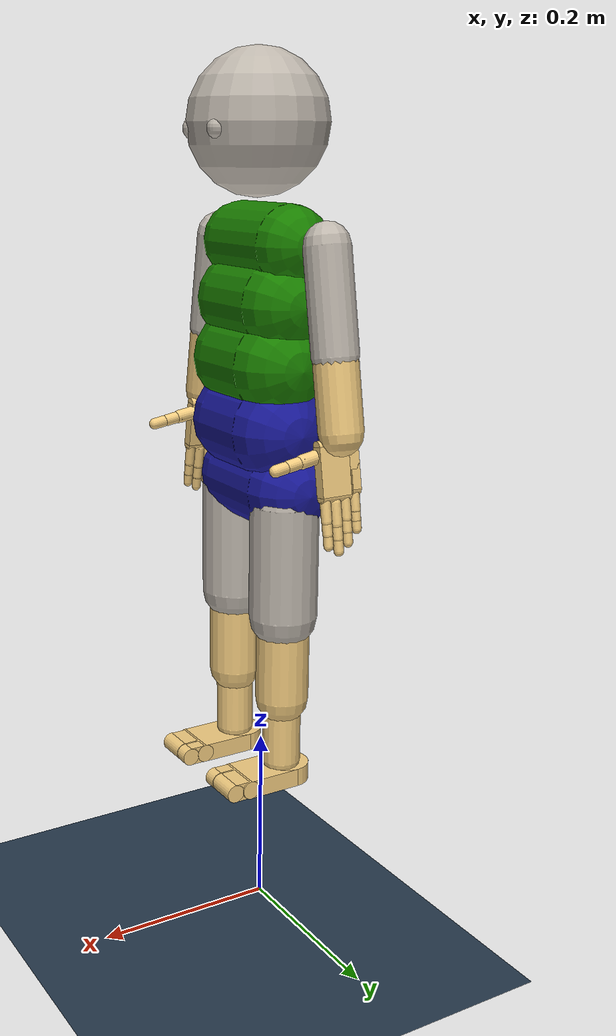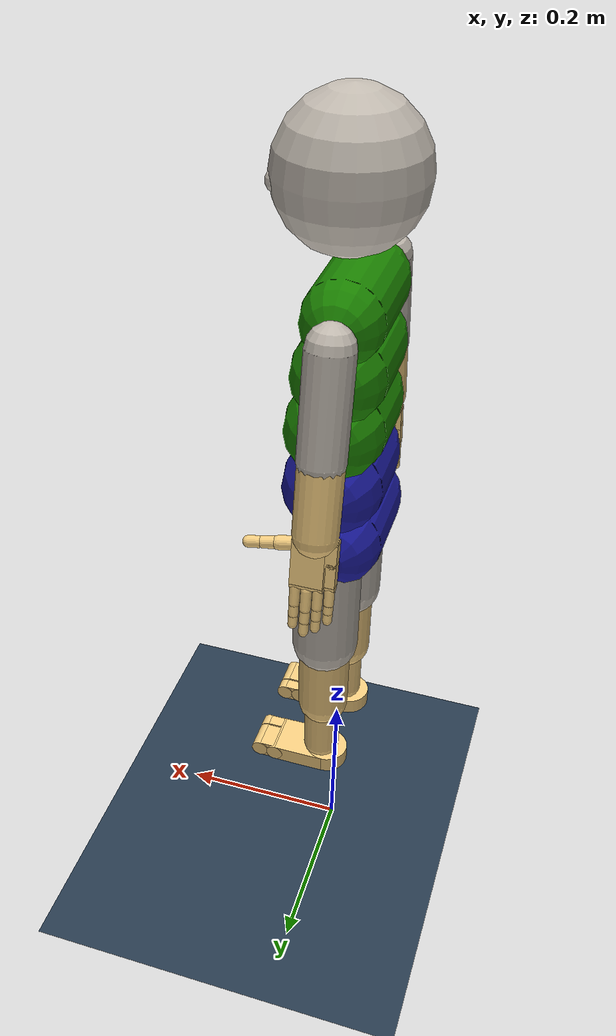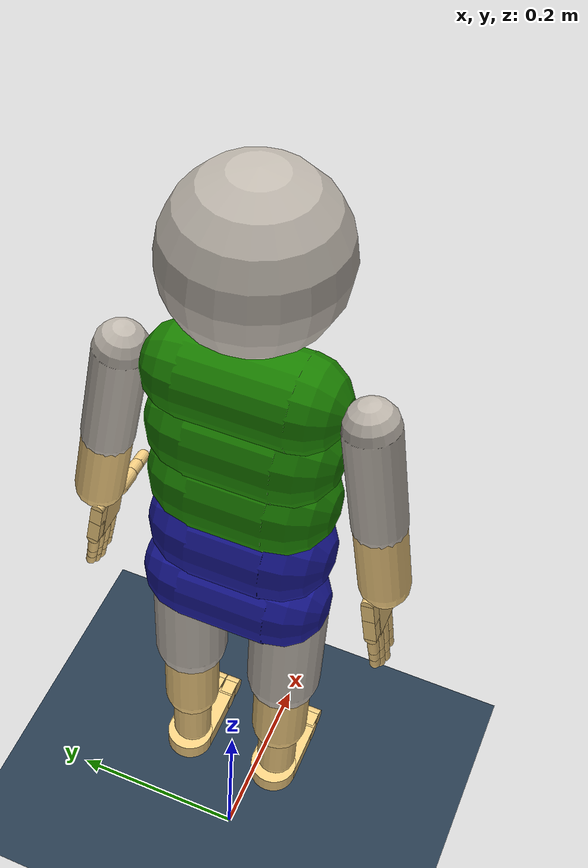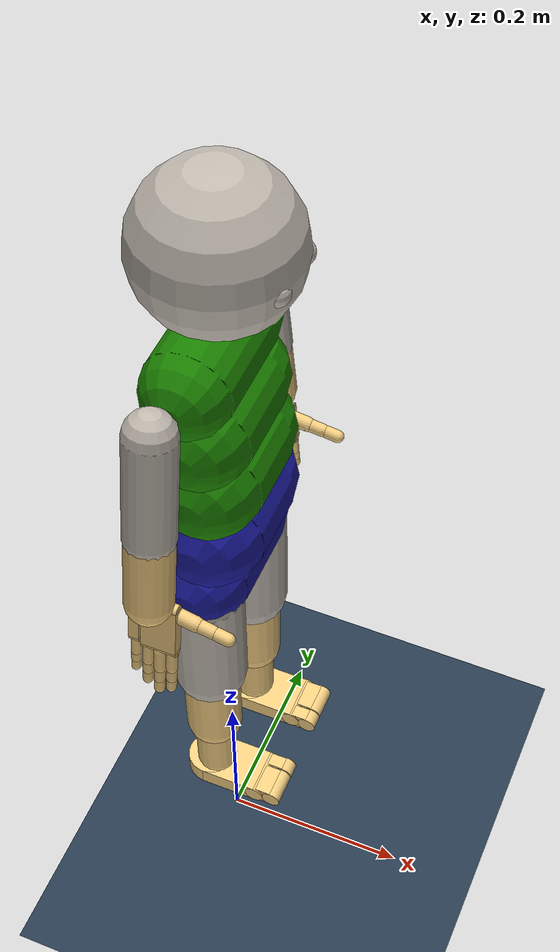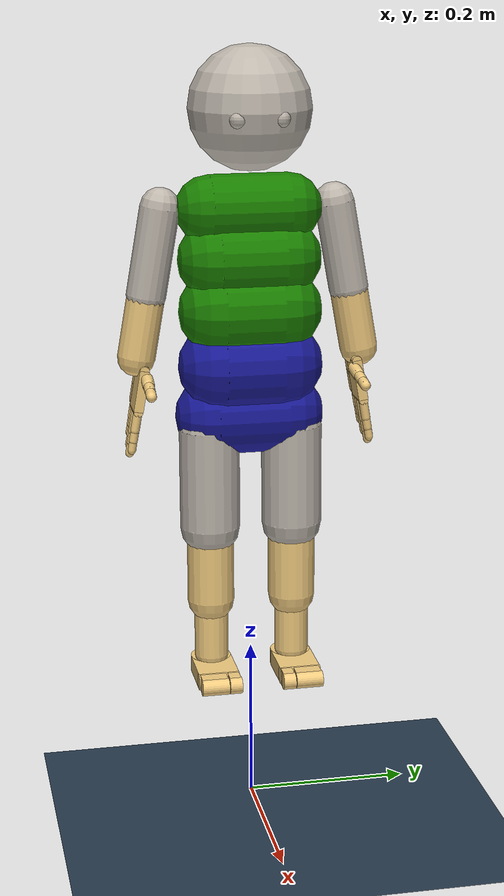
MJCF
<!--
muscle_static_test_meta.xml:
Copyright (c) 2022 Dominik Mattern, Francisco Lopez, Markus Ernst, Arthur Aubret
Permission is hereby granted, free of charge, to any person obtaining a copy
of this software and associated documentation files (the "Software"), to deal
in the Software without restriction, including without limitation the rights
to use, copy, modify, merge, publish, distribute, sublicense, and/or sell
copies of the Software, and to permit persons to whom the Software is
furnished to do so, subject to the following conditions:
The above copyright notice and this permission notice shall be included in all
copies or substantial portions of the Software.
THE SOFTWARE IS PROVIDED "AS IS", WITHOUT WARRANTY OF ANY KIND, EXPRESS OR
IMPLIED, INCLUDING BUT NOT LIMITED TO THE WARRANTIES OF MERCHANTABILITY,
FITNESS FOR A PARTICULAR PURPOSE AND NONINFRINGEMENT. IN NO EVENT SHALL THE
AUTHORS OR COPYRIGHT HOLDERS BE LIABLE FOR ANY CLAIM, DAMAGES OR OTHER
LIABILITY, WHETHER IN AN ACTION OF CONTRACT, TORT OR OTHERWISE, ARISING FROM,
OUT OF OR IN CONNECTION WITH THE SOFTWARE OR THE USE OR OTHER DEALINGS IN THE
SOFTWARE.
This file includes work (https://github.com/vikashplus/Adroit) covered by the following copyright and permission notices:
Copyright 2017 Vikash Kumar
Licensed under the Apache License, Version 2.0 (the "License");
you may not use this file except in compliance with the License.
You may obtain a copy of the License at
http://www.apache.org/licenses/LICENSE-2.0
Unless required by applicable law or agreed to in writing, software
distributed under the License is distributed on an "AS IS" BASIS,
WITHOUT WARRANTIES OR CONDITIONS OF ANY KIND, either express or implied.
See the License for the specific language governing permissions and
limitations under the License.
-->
<mujoco model="MIMo">

    <compiler inertiafromgeom="true" angle="degree"/>

    <option timestep="0.005" gravity="0 0 0" iterations="50" tolerance="1e-10" solver="Newton" jacobian="dense" cone="elliptic" impratio="1.0"/>

    <size nconmax="1000" njmax="5000" nstack="10000000" />

    <visual>
        <map force="0.1" zfar="30" znear="0.005"/>
        <rgba haze="0.15 0.25 0.35 1"/>
        <quality shadowsize="4096"/>
        <global offwidth="800" offheight="800"/>
    </visual>

    <default>
        <geom material="matgeom" condim="3" solimp="0.95 0.99 0.001 0.5 1" solref="0.005 1"/>
    </default>

    <asset>
        <texture type="skybox" builtin="gradient" rgb1="0.3 0.5 0.7" rgb2="0 0 0" width="512" height="512"/>

        <texture name="texplane" type="2d" builtin="checker" rgb1=".2 .3 .4" rgb2=".1 0.15 0.2" width="512" height="512" mark="cross" markrgb=".8 .8 .8"/>

        <texture name="texgeom" type="cube" builtin="flat" mark="cross" width="127" height="1278"
            rgb1="0.8 0.6 0.4" rgb2="0.8 0.6 0.4" markrgb="1 1 1" random="0.01"/>

        <material name="matplane" reflectance="0.3" texture="texplane" texrepeat="1 1" texuniform="true"/>

        <material name="matgeom" texture="texgeom" texuniform="true" rgba="0.8 0.6 .4 1"/>

		<material name="matmocap" texture="texgeom" texuniform="true" rgba="0.5 0 0.5 0.5"/>

    </asset>

	<!-- Import everything except the kinematic tree -->
	<include file="muscle_static_test_meta.xml"></include>

    <worldbody>
        <geom name="floor" pos="0 0 0" size="0 0 .25" type="plane" material="matplane" condim="3"/>

        <light directional="false" diffuse=".4 .4 .4" specular="0 0 0" pos="0 0 10" dir="0 0 -1" castshadow="false"/>
        <light mode="targetbodycom" target="upper_body" directional="false" diffuse=".8 .8 .8" specular="0.3 0.3 0.3" pos="0 0 5.0" dir="0 0 -1"/>

		<!-- The location and orientation of the base model can be set using this body -->
		<body name="mimo_location" pos="0 0 .5" euler="0 0 0">
			<freejoint/>
			<include file="mimo/MIMo_modelv2.xml"></include> <!-- Import the actual model-->
		</body>

    </worldbody>

    <equality>
		<weld body1="hip"/>
	</equality>

</mujoco>

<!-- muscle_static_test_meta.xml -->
<mujoco model="MIMo">

		<!-- We use the first three user values on actuators to store the muscle model parameters. The first is  -->
	<size nuser_actuator="3" />

	<default>
		<default class="mimo">
        	<joint limited="true" damping="1" stiffness="1" armature="0.01" solimplimit="0.98 0.99 0.001 .5 1" solreflimit="0.02 1"/>
        	<geom condim="3" material="skin" density="985" friction="1 0.005 0.0002" solimp="0.95 0.99 0.001 0.5 1" solref="0.005 1"/>
        	<motor ctrlrange="-1 1" ctrllimited="true" forcelimited="true"/>
    	</default>
	</default>

    <asset>

		<texture name="tex_head_default" type="cube" fileright="tex/head_front.png" fileleft="tex/head_back.png" fileup="tex/head_left.png" filedown="tex/head_right.png" filefront="tex/head_top.png" rgb1="0.95 .8 .5"/>
		<texture name="tex_head_happy" type="cube" fileright="tex/head_front_happy.png" fileleft="tex/head_back.png" fileup="tex/head_left.png" filedown="tex/head_right.png" filefront="tex/head_top.png" rgb1="0.95 .8 .5"/>
		<texture name="tex_head_sad" type="cube" fileright="tex/head_front_sad.png" fileleft="tex/head_back.png" fileup="tex/head_left.png" filedown="tex/head_right.png" filefront="tex/head_top.png" rgb1="0.95 .8 .5"/>
		<texture name="tex_head_surprised" type="cube" fileright="tex/head_front_surprised.png" fileleft="tex/head_back.png" fileup="tex/head_left.png" filedown="tex/head_right.png" filefront="tex/head_top.png" rgb1="0.95 .8 .5"/>
		<texture name="tex_head_angry" type="cube" fileright="tex/head_front_angry.png" fileleft="tex/head_back.png" fileup="tex/head_left.png" filedown="tex/head_right.png" filefront="tex/head_top.png" rgb1="0.95 .8 .5"/>
		<texture name="tex_head_disgusted" type="cube" fileright="tex/head_front_disgusted.png" fileleft="tex/head_back.png" fileup="tex/head_left.png" filedown="tex/head_right.png" filefront="tex/head_top.png" rgb1="0.95 .8 .5"/>
		<texture name="tex_head_scared" type="cube" fileright="tex/head_front_scared.png" fileleft="tex/head_back.png" fileup="tex/head_left.png" filedown="tex/head_right.png" filefront="tex/head_top.png" rgb1="0.95 .8 .5"/>
		<texture name="tex_top_sleeve" type="cube" fileright="tex/sleeve_right.png" fileleft="tex/sleeve_left.png" fileup="tex/sleeve_up.png" filedown="tex/sleeve_down.png" filefront="tex/sleeve_front.png" fileback="tex/sleeve_back.png" rgb1="0.95 .8 .5"/>
		<texture name="tex_pants_leg" type="cube" fileright="tex/leg_right.png" fileleft="tex/leg_left.png" fileup="tex/leg_up.png" filedown="tex/leg_down.png" filefront="tex/leg_front.png" fileback="tex/leg_back.png" rgb1="0.95 .8 .5"/>
		<texture name="tex_eye_left" type="cube" fileright="tex/eye_pupil_left.png" rgb1="1 1 1"/>
		<texture name="tex_eye_right" type="cube" fileright="tex/eye_pupil_right.png" rgb1="1 1 1"/>

		<material name="skin" rgba="0.95 0.8 0.5 1" specular=".15" shininess=".7"/>
		<material name="buttons" rgba=".05 .05 .05 1" specular=".9" shininess=".9"/>
		<material name="head" texture="tex_head_default" texuniform="true" specular=".0" shininess=".0"/>
		<material name="top_up" rgba=".1 .5 0.0 1" specular=".0" shininess=".0"/>
		<material name="top_middle" rgba=".1 .5 0.0 1" specular=".0" shininess=".0"/>
		<material name="top_down" rgba=".1 .5 0.0 1" specular=".0" shininess=".0"/>
		<material name="top_sleeve" texture="tex_top_sleeve" texuniform="true" specular=".0" shininess=".0"/>
		<material name="pants_up" rgba="0.1 0.1 0.6 1" specular=".0" shininess=".0"/>
		<material name="pants_down" rgba="0.1 0.1 0.6 1" specular=".0" shininess=".0"/>
		<material name="pants_leg" texture="tex_pants_leg" texuniform="true" specular=".0" shininess=".0"/>
		<material name="eye_left" texture="tex_eye_left" texuniform="true" specular=".0" shininess=".0"/>
		<material name="eye_right" texture="tex_eye_right" texuniform="true" specular=".0" shininess=".0"/>

    </asset>

	<!-- Internal contacts should not have friction to reduce "getting stuck" on ourselves-->
	<contact>
		<pair geom1="lb" geom2="ub1" condim="1"/>
	</contact>

	<tendon>
		<fixed class="mimo" name="hip_bend" limited="true" range="-.01 .01">
			<joint joint="robot:hip_bend1" coef="1"/>
			<joint joint="robot:hip_bend2" coef="-1"/>
		</fixed>
		<fixed class="mimo" name="hip_rotation" limited="true" range="-.01 .01">
			<joint joint="robot:hip_rot1" coef="1"/>
			<joint joint="robot:hip_rot2" coef="-1"/>
		</fixed>
		<fixed class="mimo" name="hip_lean" limited="true" range="-.01 .01">
			<joint joint="robot:hip_lean1" coef="1"/>
			<joint joint="robot:hip_lean2" coef="-.5"/>
		</fixed>

		<fixed class="mimo" name="head_limits1" limited="true" range="-2.1 2.1">
			<joint joint="robot:head_swivel" coef="1"/>
			<joint joint="robot:head_tilt_side" coef="1"/>
		</fixed>
		<fixed class="mimo" name="head_limits2" limited="true" range="-2.1 2.1">
			<joint joint="robot:head_tilt" coef="1"/>
			<joint joint="robot:head_tilt_side" coef="1"/>
		</fixed>
		<fixed class="mimo" name="head_limits3" limited="true" range="-2.1 2.1">
			<joint joint="robot:head_swivel" coef="1"/>
			<joint joint="robot:head_tilt" coef="1"/>
		</fixed>
		<fixed class="mimo" name="head_limits1_sym" limited="true" range="-2.1 2.1">
			<joint joint="robot:head_swivel" coef="1"/>
			<joint joint="robot:head_tilt_side" coef="-1"/>
		</fixed>
		<fixed class="mimo" name="head_limits2_sym" limited="true" range="-2.1 2.1">
			<joint joint="robot:head_tilt" coef="1"/>
			<joint joint="robot:head_tilt_side" coef="-1"/>
		</fixed>
		<fixed class="mimo" name="head_limits3_sym" limited="true" range="-2.1 2.1">
			<joint joint="robot:head_swivel" coef="1"/>
			<joint joint="robot:head_tilt" coef="-1"/>
		</fixed>
	</tendon>

	<sensor>
		<accelerometer name="vestibular_acc" site="vestibular"/>
		<gyro name="vestibular_gyro" site="vestibular"/>

		<torque name="proprio:neck" site="torque_neck"/>
		<torque name="proprio:left_eye" site="torque_left_eye"/>
		<torque name="proprio:right_eye" site="torque_right_eye"/>

		<torque name="proprio:trunk_upper" site="torque_ub"/>
		<torque name="proprio:trunk_lower" site="torque_lb"/>

		<torque name="proprio:right_shoulder" site="torque_right_shoulder"/>
		<torque name="proprio:right_elbow" site="torque_right_elbow"/>
		<torque name="proprio:right_wrist" site="torque_right_wrist"/>

		<torque name="proprio:right_ff_knuckle" site="torque_right_ff_knuckle"/>
		<torque name="proprio:right_ff_middle" site="torque_right_ff_middle"/>
		<torque name="proprio:right_ff_distal" site="torque_right_ff_distal"/>
		<torque name="proprio:right_mf_knuckle" site="torque_right_mf_knuckle"/>
		<torque name="proprio:right_mf_middle" site="torque_right_mf_middle"/>
		<torque name="proprio:right_mf_distal" site="torque_right_mf_distal"/>
		<torque name="proprio:right_rf_knuckle" site="torque_right_rf_knuckle"/>
		<torque name="proprio:right_rf_middle" site="torque_right_rf_middle"/>
		<torque name="proprio:right_rf_distal" site="torque_right_rf_distal"/>
		<torque name="proprio:right_lf_meta" site="torque_right_lf_meta"/>
		<torque name="proprio:right_lf_knuckle" site="torque_right_lf_knuckle"/>
		<torque name="proprio:right_lf_middle" site="torque_right_lf_middle"/>
		<torque name="proprio:right_lf_distal" site="torque_right_lf_distal"/>
		<torque name="proprio:right_th_base" site="torque_right_th_base"/>
		<torque name="proprio:right_th_hub" site="torque_right_th_hub"/>
		<torque name="proprio:right_th_distal" site="torque_right_th_distal"/>

		<torque name="proprio:left_shoulder" site="torque_left_shoulder"/>
		<torque name="proprio:left_elbow" site="torque_left_elbow"/>
		<torque name="proprio:left_wrist" site="torque_left_wrist"/>

		<torque name="proprio:left_ff_knuckle" site="torque_left_ff_knuckle"/>
		<torque name="proprio:left_ff_middle" site="torque_left_ff_middle"/>
		<torque name="proprio:left_ff_distal" site="torque_left_ff_distal"/>
		<torque name="proprio:left_mf_knuckle" site="torque_left_mf_knuckle"/>
		<torque name="proprio:left_mf_middle" site="torque_left_mf_middle"/>
		<torque name="proprio:left_mf_distal" site="torque_left_mf_distal"/>
		<torque name="proprio:left_rf_knuckle" site="torque_left_rf_knuckle"/>
		<torque name="proprio:left_rf_middle" site="torque_left_rf_middle"/>
		<torque name="proprio:left_rf_distal" site="torque_left_rf_distal"/>
		<torque name="proprio:left_lf_meta" site="torque_left_lf_meta"/>
		<torque name="proprio:left_lf_knuckle" site="torque_left_lf_knuckle"/>
		<torque name="proprio:left_lf_middle" site="torque_left_lf_middle"/>
		<torque name="proprio:left_lf_distal" site="torque_left_lf_distal"/>
		<torque name="proprio:left_th_base" site="torque_left_th_base"/>
		<torque name="proprio:left_th_hub" site="torque_left_th_hub"/>
		<torque name="proprio:left_th_distal" site="torque_left_th_distal"/>

		<torque name="proprio:right_hip" site="torque_right_hip"/>
		<torque name="proprio:right_knee" site="torque_right_knee"/>
		<torque name="proprio:right_ankle" site="torque_right_ankle"/>
		<torque name="proprio:right_toes" site="torque_right_toes"/>
		<torque name="proprio:right_big_toe" site="torque_right_big_toe"/>

		<torque name="proprio:left_hip" site="torque_left_hip"/>
		<torque name="proprio:left_knee" site="torque_left_knee"/>
		<torque name="proprio:left_ankle" site="torque_left_ankle"/>
		<torque name="proprio:left_toes" site="torque_left_toes"/>
		<torque name="proprio:left_big_toe" site="torque_left_big_toe"/>
	</sensor>

    <actuator>
		<!-- 12 + 2*30 + 2*9 = 90 degrees of freedom-->
		<motor class="mimo"	name="act:hip_bend" 						joint="robot:hip_bend1" 		gear="10.58" 	forcerange="-1 .765"	user="0 0 0"/>
		<motor class="mimo"	name="act:hip_twist" 						joint="robot:hip_rot1" 			gear="3.63" 	forcerange="-1 1"		user="0 0"/>
		<motor class="mimo"	name="act:hip_lean" 						joint="robot:hip_lean1" 		gear="7.25" 	forcerange="-1 1"		user="0 0"/>

		<motor class="mimo"	name="act:head_swivel" 						joint="robot:head_swivel" 		gear="1.8" 	forcerange="-1 1"			user="0 0"/>
		<motor class="mimo"	name="act:head_tilt" 						joint="robot:head_tilt" 		gear="3.3" 	forcerange="-1 .55"			user="0 0"/>
		<motor class="mimo"	name="act:head_tilt_side" 					joint="robot:head_tilt_side" 	gear="1.8" 	forcerange="-1 1"			user="0 0"/>

		<motor class="mimo" name="act:left_eye_horizontal" 				joint="robot:left_eye_horizontal" 	gear=".0000054" 	forcerange="-1 1"	user="0 0"/>
		<motor class="mimo" name="act:left_eye_vertical" 				joint="robot:left_eye_vertical" 	gear=".0000054" 	forcerange="-1 1"	user="0 0"/>
		<motor class="mimo" name="act:left_eye_torsional" 				joint="robot:left_eye_torsional" 	gear=".0000037" 	forcerange="-1 1"	user="0 0"/>
		<motor class="mimo" name="act:right_eye_horizontal" 			joint="robot:right_eye_horizontal" 	gear=".0000054" 	forcerange="-1 1"	user="0 0"/>
		<motor class="mimo" name="act:right_eye_vertical" 				joint="robot:right_eye_vertical" 	gear=".0000054" 	forcerange="-1 1"	user="0 0"/>
		<motor class="mimo" name="act:right_eye_torsional" 				joint="robot:right_eye_torsional" 	gear=".0000037" 	forcerange="-1 1"	user="0 0"/>

		<motor class="mimo"	name="act:right_shoulder_horizontal" 		joint="robot:right_shoulder_horizontal" gear="1.8" 	forcerange="-1 1"		user="0 0"/>
		<motor class="mimo"	name="act:right_shoulder_abduction" 		joint="robot:right_shoulder_ad_ab" 		gear="4" 	forcerange="-.6875 1"	user="0 0"/>
		<motor class="mimo"	name="act:right_shoulder_internal" 			joint="robot:right_shoulder_rotation" 	gear="2.5" 	forcerange="-1 .64"		user="0 0"/>
		<motor class="mimo"	name="act:right_elbow" 						joint="robot:right_elbow" 				gear="3.6" 	forcerange="-1 .83"		user="0 0"/>
		<motor class="mimo"	name="act:right_wrist_rotation" 			joint="robot:right_hand1" 				gear=".7"	forcerange="-1 1"		user="0 0"/>
		<motor class="mimo"	name="act:right_wrist_flexion" 				joint="robot:right_hand2" 				gear="1.24"	forcerange="-1 .57"		user="0 0"/>
		<motor class="mimo"	name="act:right_wrist_ulnar" 				joint="robot:right_hand3" 				gear=".95"	forcerange="-.87 1"		user="0 0"/>

		<motor class="mimo"	name="act:right_ff_side" gear=".05" 		joint="robot:right_ff_side" 	forcerange="-1 1"			user="0 0"/>
		<motor class="mimo"	name="act:right_ff_knuckle" gear=".0619" 	joint="robot:right_ff_knuckle" 	forcerange="-.345 1"		user="0 0"/>
		<motor class="mimo"	name="act:right_ff_middle" gear=".02063" 	joint="robot:right_ff_middle" 	forcerange="-.345 1"		user="0 0"/>
		<motor class="mimo"	name="act:right_ff_distal" gear=".01548" 	joint="robot:right_ff_distal" 	forcerange="-.345 1"		user="0 0"/>

		<motor class="mimo"	name="act:right_mf_side" gear=".05" 		joint="robot:right_mf_side" 	forcerange="-1 1"			user="0 0"/>
		<motor class="mimo"	name="act:right_mf_knuckle" gear=".117" 	joint="robot:right_mf_knuckle" 	forcerange="-.345 1"		user="0 0"/>
		<motor class="mimo"	name="act:right_mf_middle" gear=".039" 		joint="robot:right_mf_middle" 	forcerange="-.345 1"		user="0 0"/>
		<motor class="mimo"	name="act:right_mf_distal" gear=".02925" 	joint="robot:right_mf_distal" 	forcerange="-.345 1"		user="0 0"/>

		<motor class="mimo"	name="act:right_rf_side" gear=".05" 		joint="robot:right_rf_side" 	forcerange="-1 1"			user="0 0"/>
		<motor class="mimo"	name="act:right_rf_knuckle" gear=".078" 	joint="robot:right_rf_knuckle" 	forcerange="-.345 1"		user="0 0"/>
		<motor class="mimo"	name="act:right_rf_middle" gear=".026" 		joint="robot:right_rf_middle" 	forcerange="-.345 1"		user="0 0"/>
		<motor class="mimo"	name="act:right_rf_distal" gear=".0195" 	joint="robot:right_rf_distal" 	forcerange="-.345 1"		user="0 0"/>

		<motor class="mimo"	name="act:right_lf_side" gear=".05" 		joint="robot:right_lf_side" 	forcerange="-1 1"			user="0 0"/>
		<motor class="mimo"	name="act:right_lf_meta" gear=".064" 		joint="robot:right_lf_meta" 	forcerange="-.345 1"		user="0 0"/>
		<motor class="mimo"	name="act:right_lf_knuckle" gear=".0196" 	joint="robot:right_lf_knuckle" 	forcerange="-.345 1"		user="0 0"/>
		<motor class="mimo"	name="act:right_lf_middle" gear=".00653" 	joint="robot:right_lf_middle" 	forcerange="-.345 1"		user="0 0"/>
		<motor class="mimo"	name="act:right_lf_distal" gear=".00490" 	joint="robot:right_lf_distal" 	forcerange="-.345 1"		user="0 0"/>

		<motor class="mimo"	name="act:right_thumb_side" gear=".373" 	joint="robot:right_th_swivel" 		forcerange="-.345 1"	user="0 0"/>
		<motor class="mimo"	name="act:right_thumb_add" gear=".134" 		joint="robot:right_th_adduction" 	forcerange="-1 1"		user="0 0"/>
		<motor class="mimo"	name="act:right_thumb_rotation" gear=".1" 	joint="robot:right_th_rot" 			forcerange="-1 1"		user="0 0"/>
		<motor class="mimo"	name="act:right_thumb_pivot" gear=".1" 		joint="robot:right_th_pivot" 		forcerange="-1 1"		user="0 0"/>
		<motor class="mimo"	name="act:right_thumb_middle" gear=".126" 	joint="robot:right_th_middle" 		forcerange="-.345 1"	user="0 0"/>
		<motor class="mimo"	name="act:right_thumb_distal" gear=".0945" 	joint="robot:right_th_distal" 		forcerange="-.345 1"	user="0 0"/>

		<motor class="mimo"	name="act:left_shoulder_horizontal" 		joint="robot:left_shoulder_horizontal" 	gear="1.8" 	forcerange="-1 1"		user="0 0"/>
		<motor class="mimo"	name="act:left_shoulder_abduction" 			joint="robot:left_shoulder_ad_ab" 		gear="4" 	forcerange="-.6875 1"	user="0 0"/>
		<motor class="mimo"	name="act:left_shoulder_internal" 			joint="robot:left_shoulder_rotation" 	gear="2.5" 	forcerange="-1 .64"		user="0 0"/>
		<motor class="mimo"	name="act:left_elbow" 						joint="robot:left_elbow" 				gear="3.6" 	forcerange="-1 .83"		user="0 0"/>
		<motor class="mimo"	name="act:left_wrist_rotation" 				joint="robot:left_hand1"  				gear=".7"	forcerange="-1 1"		user="0 0"/>
		<motor class="mimo"	name="act:left_wrist_flexion" 				joint="robot:left_hand2"  				gear="1.24"	forcerange="-1 .57"		user="0 0"/>
		<motor class="mimo"	name="act:left_wrist_ulnar" 				joint="robot:left_hand3"  				gear=".95"	forcerange="-.87 1"		user="0 0"/>

		<motor class="mimo"	name="act:left_ff_side" gear=".05" 			joint="robot:left_ff_side" 		forcerange="-1 1"		user="0 0"/>
		<motor class="mimo"	name="act:left_ff_knuckle" gear=".0619" 	joint="robot:left_ff_knuckle" 	forcerange="-.345 1"	user="0 0"/>
		<motor class="mimo"	name="act:left_ff_middle" gear=".02063" 	joint="robot:left_ff_middle" 	forcerange="-.345 1"	user="0 0"/>
		<motor class="mimo"	name="act:left_ff_distal" gear=".01548" 	joint="robot:left_ff_distal" 	forcerange="-.345 1"	user="0 0"/>

		<motor class="mimo"	name="act:left_mf_side" gear=".05" 			joint="robot:left_mf_side" 		forcerange="-1 1"		user="0 0"/>
		<motor class="mimo"	name="act:left_mf_knuckle" gear=".117" 		joint="robot:left_mf_knuckle" 	forcerange="-.345 1"	user="0 0"/>
		<motor class="mimo"	name="act:left_mf_middle" gear=".039" 		joint="robot:left_mf_middle" 	forcerange="-.345 1"	user="0 0"/>
		<motor class="mimo"	name="act:left_mf_distal" gear=".02925" 	joint="robot:left_mf_distal" 	forcerange="-.345 1"	user="0 0"/>

		<motor class="mimo"	name="act:left_rf_side" gear=".05" 			joint="robot:left_rf_side" 		forcerange="-1 1"		user="0 0"/>
		<motor class="mimo"	name="act:left_rf_knuckle" gear=".078" 		joint="robot:left_rf_knuckle" 	forcerange="-.345 1"	user="0 0"/>
		<motor class="mimo"	name="act:left_rf_middle" gear=".026" 		joint="robot:left_rf_middle" 	forcerange="-.345 1"	user="0 0"/>
		<motor class="mimo"	name="act:left_rf_distal" gear=".0195" 		joint="robot:left_rf_distal" 	forcerange="-.345 1"	user="0 0"/>

		<motor class="mimo"	name="act:left_lf_side" gear=".05" 			joint="robot:left_lf_side" 		forcerange="-1 1"		user="0 0"/>
		<motor class="mimo"	name="act:left_lf_meta" gear=".064" 		joint="robot:left_lf_meta" 		forcerange="-.345 1"	user="0 0"/>
		<motor class="mimo"	name="act:left_lf_knuckle" gear=".0196" 	joint="robot:left_lf_knuckle" 	forcerange="-.345 1"	user="0 0"/>
		<motor class="mimo"	name="act:left_lf_middle" gear=".00653" 	joint="robot:left_lf_middle" 	forcerange="-.345 1"	user="0 0"/>
		<motor class="mimo"	name="act:left_lf_distal" gear=".00490" 	joint="robot:left_lf_distal" 	forcerange="-.345 1"	user="0 0"/>

		<motor class="mimo"	name="act:left_thumb_side" gear=".373" 		joint="robot:left_th_swivel" 	forcerange="-.345 1"	user="0 0"/>
		<motor class="mimo"	name="act:left_thumb_add" gear=".134" 		joint="robot:left_th_adduction" forcerange="-1 1"		user="0 0"/>
		<motor class="mimo"	name="act:left_thumb_rotation" gear=".1" 	joint="robot:left_th_rot" 		forcerange="-1 1"		user="0 0"/>
		<motor class="mimo"	name="act:left_thumb_pivot" gear=".1" 		joint="robot:left_th_pivot" 	forcerange="-1 1"		user="0 0"/>
		<motor class="mimo"	name="act:left_thumb_middle" gear=".126" 	joint="robot:left_th_middle" 	forcerange="-.345 1"	user="0 0"/>
		<motor class="mimo"	name="act:left_thumb_distal" gear=".0945" 	joint="robot:left_th_distal" 	forcerange="-.345 1"	user="0 0"/>

		<motor class="mimo"	name="act:right_hip_flex" 					joint="robot:right_hip1" 		gear="8" 		forcerange="-1 1"	user="0 0"/>
		<motor class="mimo"	name="act:right_hip_abduction" 				joint="robot:right_hip2" 		gear="6.24" 	forcerange="-1 1"	user="0 0"/>
		<motor class="mimo"	name="act:right_hip_rotation" 				joint="robot:right_hip3" 		gear="3.54" 	forcerange="-.75 1"	user="0 0"/>
		<motor class="mimo"	name="act:right_knee" 						joint="robot:right_knee" 		gear="10" 		forcerange="-.65 1"	user="0 0"/>
		<motor class="mimo"	name="act:right_foot_flexion" 				joint="robot:right_foot1" 		gear="3.78"		forcerange="-1 .5"	user="0 0"/>
		<motor class="mimo"	name="act:right_foot_inversion" 			joint="robot:right_foot2" 		gear="1.16"		forcerange="-.91 1"	user="0 0"/>
		<motor class="mimo"	name="act:right_foot_rotation" 				joint="robot:right_foot3"	 	gear="1.2"		forcerange="-1 1"	user="0 0"/>
		<motor class="mimo"	name="act:right_big_toe" 					joint="robot:right_big_toe"	 	gear=".165"		forcerange="-1 .3"	user="0 0"/>
		<motor class="mimo"	name="act:right_toes" 						joint="robot:right_toes"	 	gear=".165"		forcerange="-1 .3"	user="0 0"/>

		<motor class="mimo"	name="act:left_hip_flex" 					joint="robot:left_hip1" 		gear="8" 		forcerange="-1 1"	user="0 0"/>
		<motor class="mimo"	name="act:left_hip_abduction" 				joint="robot:left_hip2" 		gear="6.24" 	forcerange="-1 1"	user="0 0"/>
		<motor class="mimo"	name="act:left_hip_rotation" 				joint="robot:left_hip3"			gear="3.54" 	forcerange="-.75 1"	user="0 0"/>
		<motor class="mimo"	name="act:left_knee" 						joint="robot:left_knee" 		gear="10" 		forcerange="-.65 1"	user="0 0"/>
		<motor class="mimo"	name="act:left_foot_flexion" 				joint="robot:left_foot1" 		gear="3.78"		forcerange="-1 .5"	user="0 0"/>
		<motor class="mimo"	name="act:left_foot_inversion" 				joint="robot:left_foot2" 		gear="1.16"		forcerange="-.91 1"	user="0 0"/>
		<motor class="mimo"	name="act:left_foot_rotation" 				joint="robot:left_foot3" 		gear="1.2"		forcerange="-1 1"	user="0 0"/>
		<motor class="mimo"	name="act:left_toes" 						joint="robot:left_toes"	 		gear=".165"		forcerange="-1 .3"	user="0 0"/>
		<motor class="mimo"	name="act:left_big_toe" 					joint="robot:left_big_toe"	 	gear=".165"		forcerange="-1 .3"	user="0 0"/>
	</actuator>

	<equality> <!-- These contraints are used for joint locking during runtime -->
		<joint name="robot:hip_lean1" 					joint1="robot:hip_lean1" active="true" polycoef="0 1 0 0 0" solimp="0.95 0.99999 0.001 0.5 2"/>
		<joint name="robot:hip_rot1" 					joint1="robot:hip_rot1" active="true" polycoef="0 1 0 0 0" solimp="0.95 0.99999 0.001 0.5 2"/>
		<joint name="robot:hip_bend1" 					joint1="robot:hip_bend1" active="true" polycoef="0 1 0 0 0" solimp="0.95 0.99999 0.001 0.5 2"/>
		<joint name="robot:hip_lean2" 					joint1="robot:hip_lean2" active="true" polycoef="0 1 0 0 0" solimp="0.95 0.99999 0.001 0.5 2"/>
		<joint name="robot:hip_rot2" 					joint1="robot:hip_rot2" active="true" polycoef="0 1 0 0 0" solimp="0.95 0.99999 0.001 0.5 2"/>
		<joint name="robot:hip_bend2" 					joint1="robot:hip_bend2" active="true" polycoef="0 1 0 0 0" solimp="0.95 0.99999 0.001 0.5 2"/>
		<joint name="robot:head_swivel" 				joint1="robot:head_swivel" active="true" polycoef="0 1 0 0 0" solimp="0.95 0.99999 0.001 0.5 2"/>
		<joint name="robot:head_tilt" 					joint1="robot:head_tilt" active="true" polycoef="0 1 0 0 0" solimp="0.95 0.99999 0.001 0.5 2"/>
		<joint name="robot:head_tilt_side" 				joint1="robot:head_tilt_side" active="true" polycoef="0 1 0 0 0" solimp="0.95 0.99999 0.001 0.5 2"/>
		<joint name="robot:left_eye_horizontal" 		joint1="robot:left_eye_horizontal" active="true" polycoef="0 1 0 0 0" solimp="0.9 0.99999 0.001 0.5 2"/>
		<joint name="robot:left_eye_vertical" 			joint1="robot:left_eye_vertical" active="true" polycoef="0 1 0 0 0" solimp="0.9 0.99999 0.001 0.5 2"/>
		<joint name="robot:left_eye_torsional" 			joint1="robot:left_eye_torsional" active="true" polycoef="0 1 0 0 0" solimp="0.9 0.99999 0.001 0.5 2"/>
		<joint name="robot:right_eye_horizontal" 		joint1="robot:right_eye_horizontal" active="true" polycoef="0 1 0 0 0" solimp="0.9 0.99999 0.001 0.5 2"/>
		<joint name="robot:right_eye_vertical" 			joint1="robot:right_eye_vertical" active="true" polycoef="0 1 0 0 0" solimp="0.9 0.99999 0.001 0.5 2"/>
		<joint name="robot:right_eye_torsional" 		joint1="robot:right_eye_torsional" active="true" polycoef="0 1 0 0 0" solimp="0.9 0.99999 0.001 0.5 2"/>

		<joint name="robot:right_shoulder_horizontal" 	joint1="robot:right_shoulder_horizontal" active="true" polycoef="0 1 0 0 0" solimp="0.95 0.99999 0.001 0.5 2"/>
		<joint name="robot:right_shoulder_ad_ab" 		joint1="robot:right_shoulder_ad_ab" active="true" polycoef="1.4 1 0 0 0" solimp="0.95 0.99999 0.001 0.5 2"/>
		<joint name="robot:right_shoulder_rotation" 	joint1="robot:right_shoulder_rotation" active="true" polycoef="0 1 0 0 0" solimp="0.95 0.99999 0.001 0.5 2"/>
		<joint name="robot:right_elbow" 				joint1="robot:right_elbow" active="true" polycoef="-1.57 1 0 0 0" solimp="0.95 0.99999 0.001 0.5 2"/>
		<joint name="robot:right_hand1" 				joint1="robot:right_hand1" active="true" polycoef="0 1 0 0 0" solimp="0.95 0.99999 0.001 0.5 2"/>
		<joint name="robot:right_hand2" 				joint1="robot:right_hand2" active="true" polycoef="0 1 0 0 0" solimp="0.95 0.99999 0.001 0.5 2"/>
		<joint name="robot:right_hand3" 				joint1="robot:right_hand3" active="true" polycoef="0 1 0 0 0" solimp="0.95 0.99999 0.001 0.5 2"/>

		<joint name="robot:right_ff_side" 				joint1="robot:right_ff_side" active="true" polycoef="0 1 0 0 0" solimp="0.95 0.99999 0.001 0.5 2"/>
		<joint name="robot:right_ff_knuckle" 			joint1="robot:right_ff_knuckle" active="true" polycoef=".79 1 0 0 0" solimp="0.95 0.99999 0.001 0.5 2"/>
		<joint name="robot:right_ff_middle" 			joint1="robot:right_ff_middle" active="true" polycoef=".79 1 0 0 0" solimp="0.95 0.99999 0.001 0.5 2"/>
		<joint name="robot:right_ff_distal" 			joint1="robot:right_ff_distal" active="true" polycoef=".35 1 0 0 0" solimp="0.95 0.99999 0.001 0.5 2"/>
		<joint name="robot:right_mf_side" 				joint1="robot:right_mf_side" active="true" polycoef="0 1 0 0 0" solimp="0.95 0.99999 0.001 0.5 2"/>
		<joint name="robot:right_mf_knuckle" 			joint1="robot:right_mf_knuckle" active="true" polycoef=".79 1 0 0 0" solimp="0.95 0.99999 0.001 0.5 2"/>
		<joint name="robot:right_mf_middle" 			joint1="robot:right_mf_middle" active="true" polycoef=".79 1 0 0 0" solimp="0.95 0.99999 0.001 0.5 2"/>
		<joint name="robot:right_mf_distal" 			joint1="robot:right_mf_distal" active="true" polycoef=".35 1 0 0 0" solimp="0.95 0.99999 0.001 0.5 2"/>
		<joint name="robot:right_rf_side" 				joint1="robot:right_rf_side" active="true" polycoef="0 1 0 0 0" solimp="0.95 0.99999 0.001 0.5 2"/>
		<joint name="robot:right_rf_knuckle" 			joint1="robot:right_rf_knuckle" active="true" polycoef=".79 1 0 0 0" solimp="0.95 0.99999 0.001 0.5 2"/>
		<joint name="robot:right_rf_middle" 			joint1="robot:right_rf_middle" active="true" polycoef=".79 1 0 0 0" solimp="0.95 0.99999 0.001 0.5 2"/>
		<joint name="robot:right_rf_distal" 			joint1="robot:right_rf_distal" active="true" polycoef=".35 1 0 0 0" solimp="0.95 0.99999 0.001 0.5 2"/>
		<joint name="robot:right_lf_meta" 				joint1="robot:right_lf_meta" active="true" polycoef="0 1 0 0 0" solimp="0.95 0.99999 0.001 0.5 2"/>
		<joint name="robot:right_lf_side" 				joint1="robot:right_lf_side" active="true" polycoef="0 1 0 0 0" solimp="0.95 0.99999 0.001 0.5 2"/>
		<joint name="robot:right_lf_knuckle" 			joint1="robot:right_lf_knuckle" active="true" polycoef=".79 1 0 0 0" solimp="0.95 0.99999 0.001 0.5 2"/>
		<joint name="robot:right_lf_middle" 			joint1="robot:right_lf_middle" active="true" polycoef=".79 1 0 0 0" solimp="0.95 0.99999 0.001 0.5 2"/>
		<joint name="robot:right_lf_distal" 			joint1="robot:right_lf_distal" active="true" polycoef=".35 1 0 0 0" solimp="0.95 0.99999 0.001 0.5 2"/>
		<joint name="robot:right_th_swivel" 			joint1="robot:right_th_swivel" active="true" polycoef="0.2 1 0 0 0" solimp="0.95 0.99999 0.001 0.5 2"/>
		<joint name="robot:right_th_adduction" 			joint1="robot:right_th_adduction" active="true" polycoef="-.5 1 0 0 0" solimp="0.95 0.99999 0.001 0.5 2"/>
		<joint name="robot:right_th_rot" 				joint1="robot:right_th_rot" active="true" polycoef="0.1 1 0 0 0" solimp="0.95 0.99999 0.001 0.5 2"/>
		<joint name="robot:right_th_pivot" 				joint1="robot:right_th_pivot" active="true" polycoef="0 1 0 0 0" solimp="0.95 0.99999 0.001 0.5 2"/>
		<joint name="robot:right_th_middle" 			joint1="robot:right_th_middle" active="true" polycoef=".79 1 0 0 0" solimp="0.95 0.99999 0.001 0.5 2"/>
		<joint name="robot:right_th_distal" 			joint1="robot:right_th_distal" active="true" polycoef=".35 1 0 0 0" solimp="0.95 0.99999 0.001 0.5 2"/>

		<joint name="robot:left_shoulder_horizontal" 	joint1="robot:left_shoulder_horizontal" active="true" polycoef="0 1 0 0 0" solimp="0.95 0.99999 0.001 0.5 2"/>
		<joint name="robot:left_shoulder_ad_ab" 		joint1="robot:left_shoulder_ad_ab" active="true" polycoef="1.4 1 0 0 0" solimp="0.95 0.99999 0.001 0.5 2"/>
		<joint name="robot:left_shoulder_rotation" 		joint1="robot:left_shoulder_rotation" active="true" polycoef="0 1 0 0 0" solimp="0.95 0.99999 0.001 0.5 2"/>
		<joint name="robot:left_elbow" 					joint1="robot:left_elbow" active="true" polycoef="-1.57 1 0 0 0" solimp="0.95 0.99999 0.001 0.5 2"/>
		<joint name="robot:left_hand1" 					joint1="robot:left_hand1" active="true" polycoef="0 1 0 0 0" solimp="0.95 0.99999 0.001 0.5 2"/>
		<joint name="robot:left_hand2" 					joint1="robot:left_hand2" active="true" polycoef="0 1 0 0 0" solimp="0.95 0.99999 0.001 0.5 2"/>
		<joint name="robot:left_hand3" 					joint1="robot:left_hand3" active="true" polycoef="0 1 0 0 0" solimp="0.95 0.99999 0.001 0.5 2"/>

		<joint name="robot:left_ff_side" 				joint1="robot:left_ff_side" active="true" polycoef="0 1 0 0 0" solimp="0.95 0.99999 0.001 0.5 2"/>
		<joint name="robot:left_ff_knuckle" 			joint1="robot:left_ff_knuckle" active="true" polycoef=".79 1 0 0 0" solimp="0.95 0.99999 0.001 0.5 2"/>
		<joint name="robot:left_ff_middle" 				joint1="robot:left_ff_middle" active="true" polycoef=".79 1 0 0 0" solimp="0.95 0.99999 0.001 0.5 2"/>
		<joint name="robot:left_ff_distal" 				joint1="robot:left_ff_distal" active="true" polycoef=".35 1 0 0 0" solimp="0.95 0.99999 0.001 0.5 2"/>
		<joint name="robot:left_mf_side" 				joint1="robot:left_mf_side" active="true" polycoef="0 1 0 0 0" solimp="0.95 0.99999 0.001 0.5 2"/>
		<joint name="robot:left_mf_knuckle" 			joint1="robot:left_mf_knuckle" active="true" polycoef=".79 1 0 0 0" solimp="0.95 0.99999 0.001 0.5 2"/>
		<joint name="robot:left_mf_middle" 				joint1="robot:left_mf_middle" active="true" polycoef=".79 1 0 0 0" solimp="0.95 0.99999 0.001 0.5 2"/>
		<joint name="robot:left_mf_distal" 				joint1="robot:left_mf_distal" active="true" polycoef=".35 1 0 0 0" solimp="0.95 0.99999 0.001 0.5 2"/>
		<joint name="robot:left_rf_side" 				joint1="robot:left_rf_side" active="true" polycoef="0 1 0 0 0" solimp="0.95 0.99999 0.001 0.5 2"/>
		<joint name="robot:left_rf_knuckle" 			joint1="robot:left_rf_knuckle" active="true" polycoef=".79 1 0 0 0" solimp="0.95 0.99999 0.001 0.5 2"/>
		<joint name="robot:left_rf_middle" 				joint1="robot:left_rf_middle" active="true" polycoef=".79 1 0 0 0" solimp="0.95 0.99999 0.001 0.5 2"/>
		<joint name="robot:left_rf_distal" 				joint1="robot:left_rf_distal" active="true" polycoef=".35 1 0 0 0" solimp="0.95 0.99999 0.001 0.5 2"/>
		<joint name="robot:left_lf_meta" 				joint1="robot:left_lf_meta" active="true" polycoef="0 1 0 0 0" solimp="0.95 0.99999 0.001 0.5 2"/>
		<joint name="robot:left_lf_side" 				joint1="robot:left_lf_side" active="true" polycoef="0 1 0 0 0" solimp="0.95 0.99999 0.001 0.5 2"/>
		<joint name="robot:left_lf_knuckle" 			joint1="robot:left_lf_knuckle" active="true" polycoef=".79 1 0 0 0" solimp="0.95 0.99999 0.001 0.5 2"/>
		<joint name="robot:left_lf_middle" 				joint1="robot:left_lf_middle" active="true" polycoef=".79 1 0 0 0" solimp="0.95 0.99999 0.001 0.5 2"/>
		<joint name="robot:left_lf_distal" 				joint1="robot:left_lf_distal" active="true" polycoef=".35 1 0 0 0" solimp="0.95 0.99999 0.001 0.5 2"/>
		<joint name="robot:left_th_swivel" 				joint1="robot:left_th_swivel" active="true" polycoef="0.2 1 0 0 0" solimp="0.95 0.99999 0.001 0.5 2"/>
		<joint name="robot:left_th_adduction" 			joint1="robot:left_th_adduction" active="true" polycoef="-.5 1 0 0 0" solimp="0.95 0.99999 0.001 0.5 2"/>
		<joint name="robot:left_th_rot" 				joint1="robot:left_th_rot" active="true" polycoef="0.1 1 0 0 0" solimp="0.95 0.99999 0.001 0.5 2"/>
		<joint name="robot:left_th_pivot" 				joint1="robot:left_th_pivot" active="true" polycoef="0 1 0 0 0" solimp="0.95 0.99999 0.001 0.5 2"/>
		<joint name="robot:left_th_middle" 				joint1="robot:left_th_middle" active="true" polycoef=".79 1 0 0 0" solimp="0.95 0.99999 0.001 0.5 2"/>
		<joint name="robot:left_th_distal" 				joint1="robot:left_th_distal" active="true" polycoef=".35 1 0 0 0" solimp="0.95 0.99999 0.001 0.5 2"/>

		<joint name="robot:right_hip1" 					joint1="robot:right_hip1" active="true" polycoef="0 1 0 0 0" solimp="0.95 0.99999 0.001 0.5 2"/>
		<joint name="robot:right_hip2" 					joint1="robot:right_hip2" active="true" polycoef="0 1 0 0 0" solimp="0.95 0.99999 0.001 0.5 2"/>
		<joint name="robot:right_hip3" 					joint1="robot:right_hip3" active="true" polycoef="0 1 0 0 0" solimp="0.95 0.99999 0.001 0.5 2"/>
		<joint name="robot:right_knee" 					joint1="robot:right_knee" active="true" polycoef="-1.57 1 0 0 0" solimp="0.95 0.99999 0.001 0.5 2"/>
		<joint name="robot:right_foot1" 				joint1="robot:right_foot1" active="true" polycoef="0 1 0 0 0" solimp="0.95 0.99999 0.001 0.5 2"/>
		<joint name="robot:right_foot2" 				joint1="robot:right_foot2" active="true" polycoef="0 1 0 0 0" solimp="0.95 0.99999 0.001 0.5 2"/>
		<joint name="robot:right_foot3" 				joint1="robot:right_foot3" active="true" polycoef="0 1 0 0 0" solimp="0.95 0.99999 0.001 0.5 2"/>
		<joint name="robot:right_big_toe" 				joint1="robot:right_big_toe" active="true" polycoef="0 1 0 0 0" solimp="0.95 0.99999 0.001 0.5 2"/>
		<joint name="robot:right_toes" 					joint1="robot:right_toes"  active="true" polycoef="0 1 0 0 0" solimp="0.95 0.99999 0.001 0.5 2"/>

		<joint name="robot:left_hip1" 					joint1="robot:left_hip1" active="true" polycoef="0 1 0 0 0" solimp="0.95 0.99999 0.001 0.5 2"/>
		<joint name="robot:left_hip2" 					joint1="robot:left_hip2" active="true" polycoef="0 1 0 0 0" solimp="0.95 0.99999 0.001 0.5 2"/>
		<joint name="robot:left_hip3" 					joint1="robot:left_hip3" active="true" polycoef="0 1 0 0 0" solimp="0.95 0.99999 0.001 0.5 2"/>
		<joint name="robot:left_knee" 					joint1="robot:left_knee" active="true" polycoef="-1.57 1 0 0 0" solimp="0.95 0.99999 0.001 0.5 2"/>
		<joint name="robot:left_foot1" 					joint1="robot:left_foot1" active="true" polycoef="0 1 0 0 0" solimp="0.95 0.99999 0.001 0.5 2"/>
		<joint name="robot:left_foot2" 					joint1="robot:left_foot2" active="true" polycoef="0 1 0 0 0" solimp="0.95 0.99999 0.001 0.5 2"/>
		<joint name="robot:left_foot3" 					joint1="robot:left_foot3" active="true" polycoef="0 1 0 0 0" solimp="0.95 0.99999 0.001 0.5 2"/>
		<joint name="robot:left_big_toe" 				joint1="robot:left_big_toe" active="true" polycoef="0 1 0 0 0" solimp="0.95 0.99999 0.001 0.5 2"/>
		<joint name="robot:left_toes" 					joint1="robot:left_toes" active="true" polycoef="0 1 0 0 0" solimp="0.95 0.99999 0.001 0.5 2"/>
	</equality>

</mujoco>
